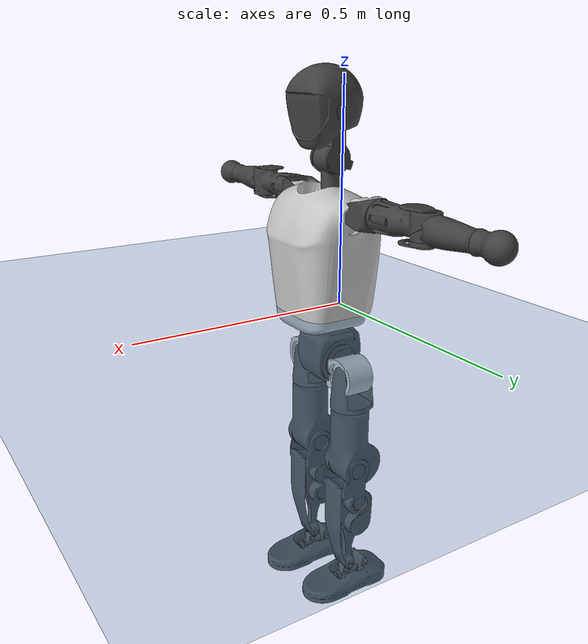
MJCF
<mujoco model="T1">
  <compiler angle="radian" assetdir="assets" balanceinertia="true" inertiafromgeom="false"/>

  <option timestep="0.005" density="1.2" viscosity="2e-05"/>

  <size nkey="1"/>

  <visual>
    <quality shadowsize="8192"/>
    <map shadowclip="0.5"/>
  </visual>

  <default>
    <default class="/">
      <joint armature="0.01" damping="0.01" frictionloss="0.1"/>
      <geom contype="0" conaffinity="0" group="1" solref="-1000 -80"/>
      <site size="0.01 0.005 0.005" group="5"/>
      <general forcelimited="true" biastype="affine" gainprm="25" biasprm="0 -25 -0.6"/>
      <default class="t1">
        <geom rgba="0.25 0.25 0.25 1"/>
        <default class="visual">
          <geom type="mesh" group="2"/>
        </default>
        <default class="collision">
          <geom group="3"/>
        </default>
        <default class="foot">
          <geom size="0.1115 0.05 0.015" type="box" condim="6" group="4" priority="1" solimp="0.015 1 0.015"/>
        </default>
        <default class="reward_collision_sphere">
          <geom group="5" rgba="1 0 0 1"/>
        </default>
      </default>
    </default>
  </default>

  <asset>
    <texture type="skybox" colorspace="auto" name="//unnamed_texture_0" builtin="gradient" rgb1="0.95 0.95 0.95" rgb2="0.95 0.95 0.95" width="100" height="600"/>
    <texture type="2d" colorspace="auto" name="texplane" builtin="checker" rgb1="0.345 0.575 0.748" rgb2="0.345 0.575 0.748" markrgb="1 1 1" width="512" height="512"/>
    <material name="MatPlane" class="/" texture="texplane" texuniform="true" texrepeat="2 2" specular="0.9"/>
    <mesh name="Trunk" class="/" file="Trunk.stl"/>
    <mesh name="H1" class="/" file="H1.stl"/>
    <mesh name="H2" class="/" file="H2.stl"/>
    <mesh name="AL1" class="/" file="AL1.stl"/>
    <mesh name="AL2" class="/" file="AL2.stl"/>
    <mesh name="AL3" class="/" file="AL3.stl"/>
    <mesh name="left_hand_link" class="/" file="left_hand_link.stl"/>
    <mesh name="AR1" class="/" file="AR1.stl"/>
    <mesh name="AR2" class="/" file="AR2.stl"/>
    <mesh name="AR3" class="/" file="AR3.stl"/>
    <mesh name="right_hand_link" class="/" file="right_hand_link.stl"/>
    <mesh name="Waist" class="/" file="Waist.stl"/>
    <mesh name="Hip_Pitch_Left" class="/" file="Hip_Pitch_Left.stl"/>
    <mesh name="Hip_Roll_Left" class="/" file="Hip_Roll_Left.stl"/>
    <mesh name="Hip_Yaw_Left" class="/" file="Hip_Yaw_Left.stl"/>
    <mesh name="Shank_Left" class="/" file="Shank_Left.stl"/>
    <mesh name="Ankle_Cross_Left" class="/" file="Ankle_Cross_Left.stl"/>
    <mesh name="left_foot_link" class="/" file="left_foot_link.stl"/>
    <mesh name="Hip_Pitch_Right" class="/" file="Hip_Pitch_Right.stl"/>
    <mesh name="Hip_Roll_Right" class="/" file="Hip_Roll_Right.stl"/>
    <mesh name="Hip_Yaw_Right" class="/" file="Hip_Yaw_Right.stl"/>
    <mesh name="Shank_Right" class="/" file="Shank_Right.stl"/>
    <mesh name="Ankle_Cross_Right" class="/" file="Ankle_Cross_Right.stl"/>
    <mesh name="right_foot_link" class="/" file="right_foot_link.stl"/>
  </asset>

  <worldbody>
    <geom name="floor" class="/" size="100 100 0.125" type="plane" group="0" material="MatPlane"/>
    <light name="toplight_shadow" class="/" pos="0 0 5" dir="0.0990148 0.0990148 -0.990148" type="directional" ambient="0.04 0.04 0.04" diffuse="0.55 0.55 0.55" specular="0.12 0.12 0.12"/>
    <light name="toplight_fill" class="/" pos="0 0 5" dir="0.0990148 0.0990148 -0.990148" type="directional" castshadow="false" ambient="0.04 0.04 0.04" diffuse="0.3 0.3 0.3" specular="0.08 0.08 0.08"/>
    <body name="trunk" childclass="t1" pos="-0.00115321 -0.00074369 -0.000372533" quat="0.999999 0.000954447 4.70289e-05 0.000758433">
      <inertial pos="0.0239278 0.000245185 0.112699" quat="0.999984 0.00477569 -0.00209729 -0.00229485" mass="4.94346" diaginertia="0.00160223 0.0223432 0.0771098"/>
      <joint name="//unnamed_joint_0" type="free" armature="0" damping="0" frictionloss="0"/>
      <geom name="//unnamed_geom_1" class="visual" rgba="0.76 0.76 0.76 1" mesh="Trunk"/>
      <geom name="//unnamed_geom_2" class="collision" size="0.0576476 0.0768635 0.115295" pos="0.0269628 0 0.128928" type="box"/>
      <geom name="//unnamed_geom_3" class="reward_collision_sphere" size="0.088393" pos="0.0269628 0 0.10744"/>
      <geom name="//unnamed_geom_4" class="reward_collision_sphere" size="0.0115295" pos="0.0269628 0.0664804 0"/>
      <geom name="//unnamed_geom_5" class="reward_collision_sphere" size="0.0115295" pos="0.0269628 -0.0664804 0"/>
      <geom name="//unnamed_geom_6" class="reward_collision_sphere" size="0.0115295" pos="0.0269628 0.083687 0.193392"/>
      <geom name="//unnamed_geom_7" class="reward_collision_sphere" size="0.0115295" pos="0.0269628 -0.083687 0.193392"/>
      <site name="imu" pos="0.024731 -0.0049223 -0.00964831" size="0.00768635"/>
      <camera name="track" pos="0 -1.56424 0" quat="0.707107 0.707107 0 0" mode="trackcom"/>
      <camera name="ego_camera" pos="0.0548245 0 0.451249" quat="-0.5 -0.5 0.5 0.5"/>
      <body name="H1" pos="0.0343704 0.00525385 0.26732" quat="0.999999 -0.000596485 0.000701306 -0.00046659">
        <inertial pos="0.000116651 -0.00116758 0.0611417" quat="0.77101 -0.0149127 -0.0211432 0.636297" mass="0.193461" diaginertia="4.46043e-06 6.96659e-05 0.000213019"/>
        <joint name="AAHead_yaw" pos="0 0 0" axis="0.0114295 -0.0197095 0.99974" range="-1.59588 1.60464" armature="0.00633404" damping="0.0122253" frictionloss="0.0765559"/>
        <geom name="//unnamed_geom_8" class="visual" mesh="H1"/>
        <body name="H2" pos="0.00110569 -0.00083251 0.0655243" quat="0.999999 0.000581133 0.00020641 0.0012579">
          <inertial pos="0.00337052 0.00672482 0.105516" quat="0.990131 0.0974557 -0.0672449 -0.0749754" mass="0.269266" diaginertia="3.57777e-05 0.000549988 0.00241087"/>
          <joint name="Head_pitch" pos="0 0 0" axis="0.00155761 -0.999999 -0.000454371" stiffness="0.000754185" range="-1.17971 0.35262" armature="0.00720914" damping="0.00756506" frictionloss="0.0742307"/>
          <geom name="//unnamed_geom_9" class="visual" mesh="H2"/>
          <geom name="//unnamed_geom_10" class="collision" size="0.0614908" pos="0.00449381 0 0.118184"/>
          <geom name="//unnamed_geom_11" class="reward_collision_sphere" size="0.0691772" pos="0.00898762 0 0.10744"/>
        </body>
      </body>
      <body name="AL1" pos="0.0274726 0.0786719 0.234825" quat="1 -5.86117e-06 0.000481136 1.24012e-05">
        <inertial pos="0.0052225 0.0301457 0.00240632" quat="0.511754 0.494334 -0.496318 0.497403" mass="0.241665" diaginertia="2.48629e-05 0.000377065 0.000415437"/>
        <joint name="Left_Shoulder_Pitch" pos="0 0 0" axis="-0.00640698 0.999978 -0.00161866" range="-3.29156 1.19805" armature="0.00738379" damping="0.00140193" frictionloss="0.0824484"/>
        <geom name="//unnamed_geom_12" class="visual" rgba="0.76 0.76 0.76 1" mesh="AL1"/>
        <body name="AL2" pos="0.00432718 0.0331921 -0.00110665" quat="1 -0.000481959 0.000427017 -0.000187963">
          <inertial pos="0.00313325 0.0272847 5.49523e-05" quat="0.488846 0.511802 -0.487233 0.511559" mass="0.0705438" diaginertia="6.70013e-06 8.8119e-05 0.00024029"/>
          <joint name="Left_Shoulder_Roll" pos="0 0 0" axis="-0.999986 0.0032549 -0.004124" range="-1.597 1.81672" armature="0.00752325" damping="0" frictionloss="0.0682591"/>
          <geom name="//unnamed_geom_13" class="visual" mesh="AL2"/>
          <body name="AL3" pos="-0.00489829 0.0467123 0.000280641" quat="1 -9.5954e-05 -0.00030046 -0.00018867">
            <inertial pos="0.00108717 0.0691036 -0.00286665" quat="0.701133 0.71294 -0.0101636 0.00513221" mass="0.460899" diaginertia="0.000232866 0.00381501 0.000909892"/>
            <joint name="Left_Elbow_Pitch" pos="0 0 0" axis="0.0119669 -0.999919 -0.00438006" range="-2.31397 2.20542" armature="0.00910963" damping="0.00181419" frictionloss="0.0745588"/>
            <geom name="//unnamed_geom_14" class="visual" mesh="AL3"/>
            <geom name="//unnamed_geom_15" class="collision" size="0.0230591 0.0576476" pos="0 0.0391061 0" quat="0.707105 0.707108 0 0" type="cylinder"/>
            <geom name="//unnamed_geom_16" class="reward_collision_sphere" size="0.0276709"/>
            <body name="left_hand_link" pos="0.00176654 0.115149 0.000456519" quat="0.999999 0.000255936 0.000864771 -0.000675891">
              <inertial pos="-0.00662838 0.0889858 -0.00187906" quat="0.70898 0.70519 -0.00336831 -0.00664561" mass="0.146665" diaginertia="0.000142954 0.00232249 0.000315429"/>
              <joint name="Left_Elbow_Yaw" pos="0 0 0" axis="0.00601448 -0.00210852 0.99998" stiffness="0.00318787" range="-2.43916 0.012789" armature="0.00674188" damping="0" frictionloss="0.0669048"/>
              <geom name="//unnamed_geom_17" class="visual" mesh="left_hand_link"/>
              <geom name="//unnamed_geom_18" class="collision" size="0.0230591 0.0672556" pos="0 0.101676 0" quat="0.707105 0.707108 0 0" type="cylinder"/>
              <geom name="//unnamed_geom_19" class="reward_collision_sphere" size="0.0384318"/>
              <geom name="//unnamed_geom_20" class="reward_collision_sphere" size="0.0269022" pos="0 0.0860334 0"/>
              <geom name="//unnamed_geom_21" class="reward_collision_sphere" size="0.0269022" pos="0 0.168156 0"/>
            </body>
          </body>
        </body>
      </body>
      <body name="AR1" pos="0.0221621 -0.0788602 0.236995" quat="1 6.24309e-06 0.000500177 8.5611e-05">
        <inertial pos="-3.22095e-05 -0.0335654 -0.000452264" quat="0.50532 0.496047 -0.50356 0.494991" mass="0.236972" diaginertia="2.4789e-05 0.000384988 0.00041695"/>
        <joint name="Right_Shoulder_Pitch" pos="0 0 0" axis="7.48599e-05 -0.999977 0.0067604" range="-1.19576 3.34618" armature="0.00719519" damping="0.0307636" frictionloss="0.0781874"/>
        <geom name="//unnamed_geom_22" class="visual" rgba="0.76 0.76 0.76 1" mesh="AR1"/>
        <body name="AR2" pos="-0.00378773 -0.035581 0.00436558" quat="1 0.000108749 0.000643416 0.00071781">
          <inertial pos="0.00195674 -0.0320954 0.00545323" quat="0.519021 0.486812 -0.512038 0.48109" mass="0.0716749" diaginertia="7.25692e-06 0.00010617 0.000252151"/>
          <joint name="Right_Shoulder_Roll" pos="0 0 0" axis="-0.999981 0.00618008 -2.69194e-05" stiffness="0.0205417" range="-1.85652 1.52507" armature="0.00794203" damping="0" frictionloss="0.0720079"/>
          <geom name="//unnamed_geom_23" class="visual" mesh="AR2"/>
          <body name="AR3" pos="-0.00359082 -0.0484321 0.00136351" quat="1 -0.000570312 -0.000427087 -0.000485959">
            <inertial pos="0.00457698 -0.0653073 -0.000674926" quat="0.70779 0.706423 -0.000118109 -7.71124e-05" mass="0.459654" diaginertia="0.000226517 0.00374585 0.000824198"/>
            <joint name="Right_Elbow_Pitch" pos="0 0 0" axis="0.000767932 1 0.000442186" stiffness="0.0146717" range="-2.26148 2.28889" armature="0.00781949" damping="0" frictionloss="0.0952225"/>
            <geom name="//unnamed_geom_24" class="visual" mesh="AR3"/>
            <geom name="//unnamed_geom_25" class="collision" size="0.0230591 0.0576476" pos="0 -0.0391061 0" quat="0.707105 0.707108 0 0" type="cylinder"/>
            <geom name="//unnamed_geom_26" class="reward_collision_sphere" size="0.0276709"/>
            <body name="right_hand_link" pos="-0.000972611 -0.115409 0.00159044" quat="1 8.31412e-05 -4.57658e-05 0.000680868">
              <inertial pos="0.000510915 -0.0880807 -0.00285914" quat="0.706339 0.707871 -0.000889692 0.00168186" mass="0.14384" diaginertia="0.000149357 0.00242418 0.000295741"/>
              <joint name="Right_Elbow_Yaw" pos="0 0 0" axis="0.00140812 0.000315367 0.999999" range="-0.0106988 2.40661" armature="0.00738162" damping="0" frictionloss="0.0931433"/>
              <geom name="//unnamed_geom_27" class="visual" mesh="right_hand_link"/>
              <geom name="//unnamed_geom_28" class="collision" size="0.0230591 0.0672556" pos="0 -0.101676 0" quat="0.707105 0.707108 0 0" type="cylinder"/>
              <geom name="//unnamed_geom_29" class="reward_collision_sphere" size="0.0384318"/>
              <geom name="//unnamed_geom_30" class="reward_collision_sphere" size="0.0269022" pos="0 -0.0860334 0"/>
              <geom name="//unnamed_geom_31" class="reward_collision_sphere" size="0.0269022" pos="0 -0.168156 0"/>
            </body>
          </body>
        </body>
      </body>
      <body name="Waist" pos="0.0286246 0.000166978 -0.121746" quat="0.999999 -0.000116827 -0.000266625 -0.00118444">
        <inertial pos="-0.000168171 -0.0011984 0.00664305" quat="0.983516 -0.00038154 -0.180789 0.0033331" mass="1.18986" diaginertia="9.01887e-05 0.00158751 0.00621571"/>
        <joint name="Waist" pos="0 0 0" axis="0.0116954 -0.00299773 0.999927" range="-1.55826 1.57867" armature="0.00754503" damping="0.0114867" frictionloss="0.0928792"/>
        <geom name="//unnamed_geom_32" class="visual" mesh="Waist"/>
        <body name="Hip_Pitch_Left" pos="0.00191098 0.0851403 -0.00179253" quat="1 -0.000474453 -0.000777446 0.000221939">
          <inertial pos="-0.00133807 -0.00306955 -0.0181608" quat="0.975163 0.220943 0.0151427 0.00337915" mass="0.449082" diaginertia="3.25907e-05 0.000404069 0.00165553"/>
          <joint name="Left_Hip_Pitch" pos="0 0 0" axis="-0.00262886 0.999913 -0.0129505" range="-1.83394 1.56782" armature="0.00719675" damping="0" frictionloss="0.0761993"/>
          <geom name="//unnamed_geom_33" class="visual" rgba="0.76 0.76 0.76 1" mesh="Hip_Pitch_Left"/>
          <body name="Hip_Roll_Left" pos="-0.00428955 0.00254585 -0.0197521" quat="0.999998 -0.000699676 -0.00176416 7.941e-05">
            <inertial pos="-0.000542595 0.00100016 -0.0573736" quat="0.707625 -0.00069432 -0.00481915 0.706571" mass="0.193211" diaginertia="3.67037e-05 0.000470113 0.000811441"/>
            <joint name="Left_Hip_Roll" pos="0 0 0" axis="-0.999856 0.0118876 0.0121267" stiffness="0.00228469" range="-1.6681 0.155445" armature="0.00772969" damping="0.00941714" frictionloss="0.0724136"/>
            <geom name="//unnamed_geom_34" class="visual" mesh="Hip_Roll_Left"/>
            <geom name="//unnamed_geom_35" class="reward_collision_sphere" size="0.0422749"/>
            <body name="Hip_Yaw_Left" pos="0.000190061 -0.00155767 -0.0883649" quat="0.999998 0.000307949 0.000845423 -0.00179802">
              <inertial pos="0.00200006 -0.00293964 -0.0977327" quat="0.69943 -0.0403988 -0.0233018 0.713178" mass="0.941186" diaginertia="0.000429376 0.00726196 0.00367658"/>
              <joint name="Left_Hip_Yaw" pos="0 0 0" axis="0.00221181 0.0098205 -0.999949" stiffness="0.0234255" range="-1.11518 0.930807" armature="0.00784167" damping="0.0172517" frictionloss="0.0655006"/>
              <geom name="//unnamed_geom_36" class="visual" mesh="Hip_Yaw_Left"/>
              <geom name="//unnamed_geom_37" class="collision" size="0.0384318 0.0614908" type="cylinder"/>
              <body name="Shank_Left" pos="-0.00286157 -0.00411048 -0.145726" quat="1 -0.000508348 0.000227725 0.000250613">
                <inertial pos="0.00294304 0.00205702 -0.131755" quat="0.995852 0.00923241 -0.0116025 0.0897666" mass="0.7997" diaginertia="0.000639875 0.00938968 0.00264328"/>
                <joint name="Left_Knee_Pitch" pos="0 0 0" axis="0.00360333 0.999858 -0.0164589" range="2.53908e-05 2.29531" armature="0.00838405" damping="0.0193486" frictionloss="0.0575277"/>
                <geom name="//unnamed_geom_38" class="visual" mesh="Shank_Left"/>
                <geom name="//unnamed_geom_39" class="collision" size="0.0384318 0.0576476" pos="0 0 -0.128928" type="cylinder"/>
                <geom name="//unnamed_geom_40" class="reward_collision_sphere" size="0.0499613"/>
                <body name="Ankle_Cross_Left" pos="0.00189478 -0.00266673 -0.299868" quat="1 -0.000291134 -0.000362778 -0.000780941">
                  <inertial pos="-0.00199408 0.00225008 -0.0107723" quat="0.446667 0.54208 0.552931 0.448225" mass="0.0329815" diaginertia="5.35035e-07 7.42766e-06 1.67105e-05"/>
                  <joint name="Left_Ankle_Pitch" pos="0 0 0" axis="-0.00570728 0.999941 0.00925323" range="-0.856795 0.376288" armature="0.00543105" damping="0" frictionloss="0.0741146"/>
                  <geom name="//unnamed_geom_41" class="visual" mesh="Ankle_Cross_Left"/>
                  <body name="left_foot_link" pos="-0.00560805 0.00281027 -0.0138352" quat="1 -2.80769e-05 -2.26463e-05 -0.000506484">
                    <inertial pos="0.00485834 -0.00121422 -0.0100351" quat="0.0109455 0.623031 -0.00391298 0.782111" mass="0.30992" diaginertia="5.01427e-05 0.0007374 0.00335248"/>
                    <joint name="Left_Ankle_Roll" pos="0 0 0" axis="-0.999988 -0.00161893 0.00457372" stiffness="0.0101496" range="-0.448597 0.432923" armature="0.00756455" damping="0.0381035" frictionloss="0.0675315"/>
                    <geom name="//unnamed_geom_42" class="visual" mesh="left_foot_link"/>
                    <geom name="left_foot" class="foot" size="0.089455 0.0454332 0.0115815" pos="0.00449381 0 -0.016116"/>
                    <geom name="//unnamed_geom_44" class="reward_collision_sphere" size="0.039969" pos="0.00449381 0 -0.016116"/>
                    <geom name="//unnamed_geom_45" class="reward_collision_sphere" size="0.0230591" pos="0.0426912 -0.0179888 -0.016116"/>
                    <geom name="//unnamed_geom_46" class="reward_collision_sphere" size="0.0230591" pos="-0.0314567 -0.0179888 -0.016116"/>
                    <site name="left_foot" class="foot" pos="0.00449381 0 -0.016116" size="0.00768635"/>
                  </body>
                </body>
              </body>
            </body>
          </body>
        </body>
        <body name="Hip_Pitch_Right" pos="0.000243293 -0.081421 0.00103872" quat="1 0.000230599 -0.00060144 5.45898e-05">
          <inertial pos="-0.00213525 0.00565232 -0.0159054" quat="0.972479 -0.232896 0.00629818 -0.00199255" mass="0.478212" diaginertia="3.53646e-05 0.000405278 0.00180634"/>
          <joint name="Right_Hip_Pitch" pos="0 0 0" axis="-0.00358108 -0.999993 0.00123594" range="-1.43729 1.69399" armature="0.0085603" damping="0" frictionloss="0.0950178"/>
          <geom name="//unnamed_geom_47" class="visual" rgba="0.76 0.76 0.76 1" mesh="Hip_Pitch_Right"/>
          <body name="Hip_Roll_Right" pos="-0.0051991 0.000890781 -0.0196552" quat="1 -2.46359e-05 -0.000494578 -0.000867746">
            <inertial pos="-0.00110015 0.0022769 -0.0603669" quat="0.700805 -0.00305386 -0.00337765 0.713339" mass="0.180062" diaginertia="3.33502e-05 0.000452529 0.000720635"/>
            <joint name="Right_Hip_Roll" pos="0 0 0" axis="-0.99971 -0.00879463 0.0224079" range="-0.208501 1.52134" armature="0.00805699" damping="0.0117721" frictionloss="0.0861556"/>
            <geom name="//unnamed_geom_48" class="visual" mesh="Hip_Roll_Right"/>
            <geom name="//unnamed_geom_49" class="reward_collision_sphere" size="0.0422749"/>
            <body name="Hip_Yaw_Right" pos="0.00469075 0.00128893 -0.0850873" quat="0.999999 -0.000549075 4.67637e-06 0.000840656">
              <inertial pos="-0.00298961 -0.00447277 -0.0953083" quat="0.7 -0.045919 -0.0146804 0.712514" mass="0.982553" diaginertia="0.00046534 0.00729004 0.00355773"/>
              <joint name="Right_Hip_Yaw" pos="0 0 0" axis="-0.00571742 0.0050223 -0.999971" stiffness="0.00230863" range="-1.04209 1.04583" armature="0.00667783" damping="0" frictionloss="0.0755305"/>
              <geom name="//unnamed_geom_50" class="visual" mesh="Hip_Yaw_Right"/>
              <geom name="//unnamed_geom_51" class="collision" size="0.0384318 0.0614908" type="cylinder"/>
              <body name="Shank_Right" pos="-0.00346487 0.00505084 -0.146528" quat="1 -1.77608e-05 -4.42339e-05 3.2656e-05">
                <inertial pos="0.00278843 -0.00673104 -0.132387" quat="0.999078 -0.0122606 -0.0302487 -0.0279059" mass="0.806303" diaginertia="0.000690186 0.0107862 0.0028819"/>
                <joint name="Right_Knee_Pitch" pos="0 0 0" axis="-0.00399215 -0.999937 0.0104573" range="-2.34064 0.0185506" armature="0.0076958" damping="0.0202842" frictionloss="0.0741751"/>
                <geom name="//unnamed_geom_52" class="visual" mesh="Shank_Right"/>
                <geom name="//unnamed_geom_53" class="collision" size="0.0384318 0.0576476" pos="0 0 -0.128928" type="cylinder"/>
                <geom name="//unnamed_geom_54" class="reward_collision_sphere" size="0.0499613"/>
                <body name="Ankle_Cross_Right" pos="0.0040943 0.00106601 -0.303154" quat="0.999999 0.000672513 -6.51872e-05 -0.000749934">
                  <inertial pos="-0.00364966 0.00326448 -0.0065517" quat="0.456941 0.552825 0.554385 0.422193" mass="0.032476" diaginertia="5.24307e-07 8.44827e-06 1.67938e-05"/>
                  <joint name="Right_Ankle_Pitch" pos="0 0 0" axis="0.00896781 -0.999953 0.00357462" stiffness="0.0079093" range="-0.342481 0.869631" armature="0.00700855" damping="0.0285758" frictionloss="0.0734123"/>
                  <geom name="//unnamed_geom_55" class="visual" mesh="Ankle_Cross_Right"/>
                  <body name="right_foot_link" pos="0.00358622 -0.000374072 -0.0170186" quat="1 -9.66606e-08 -5.55508e-07 -1.51669e-07">
                    <inertial pos="-0.00217495 0.00118749 -0.0137023" quat="-0.000969158 0.618916 -0.00166671 0.785455" mass="0.303249" diaginertia="4.74934e-05 0.000716533 0.00309414"/>
                    <joint name="Right_Ankle_Roll" pos="0 0 0" axis="-0.999989 0.00398028 -0.00263289" range="-0.456673 0.457458" armature="0.0069736" damping="0" frictionloss="0.0815707"/>
                    <geom name="//unnamed_geom_56" class="visual" mesh="right_foot_link"/>
                    <geom name="right_foot" class="foot" size="0.0994949 0.0428599 0.0121952" pos="0.00449381 0 -0.016116"/>
                    <geom name="//unnamed_geom_58" class="reward_collision_sphere" size="0.0307454"/>
                    <geom name="//unnamed_geom_59" class="reward_collision_sphere" size="0.0230591" pos="0.00449381 0 -0.016116"/>
                    <geom name="//unnamed_geom_60" class="reward_collision_sphere" size="0.0230591" pos="0.0426912 0.0179888 -0.016116"/>
                    <geom name="//unnamed_geom_61" class="reward_collision_sphere" size="0.0230591" pos="-0.0314567 0.0179888 -0.016116"/>
                    <site name="right_foot" class="foot" pos="0.00449381 0 -0.016116" size="0.00768635"/>
                  </body>
                </body>
              </body>
            </body>
          </body>
        </body>
      </body>
    </body>
  </worldbody>

  <contact>
    <pair class="/" geom1="floor" geom2="left_foot" name="//unnamed_contact_0"/>
    <pair class="/" geom1="floor" geom2="right_foot" name="//unnamed_contact_1"/>
  </contact>

  <actuator>
    <general name="AAHead_yaw" class="/" joint="AAHead_yaw" forcerange="-5.07481 5.07481" gainprm="20.0353" biasprm="0 -20.0353 -0.490627"/>
    <general name="Head_pitch" class="/" joint="Head_pitch" forcerange="-5.86551 5.86551" gainprm="20.0353" biasprm="0 -20.0353 -0.490627"/>
    <general name="Left_Shoulder_Pitch" class="/" joint="Left_Shoulder_Pitch" forcerange="-14.8115 14.8115" gainprm="20.0353" biasprm="0 -20.0353 -0.490627"/>
    <general name="Left_Shoulder_Roll" class="/" joint="Left_Shoulder_Roll" forcerange="-13.0393 13.0393" gainprm="20.0353" biasprm="0 -20.0353 -0.490627"/>
    <general name="Left_Elbow_Pitch" class="/" joint="Left_Elbow_Pitch" forcerange="-12.8188 12.8188" gainprm="20.0353" biasprm="0 -20.0353 -0.490627"/>
    <general name="Left_Elbow_Yaw" class="/" joint="Left_Elbow_Yaw" forcerange="-13.7722 13.7722" gainprm="20.0353" biasprm="0 -20.0353 -0.490627"/>
    <general name="Right_Shoulder_Pitch" class="/" joint="Right_Shoulder_Pitch" forcerange="-13.4356 13.4356" gainprm="20.0353" biasprm="0 -20.0353 -0.490627"/>
    <general name="Right_Shoulder_Roll" class="/" joint="Right_Shoulder_Roll" forcerange="-12.6926 12.6926" gainprm="20.0353" biasprm="0 -20.0353 -0.490627"/>
    <general name="Right_Elbow_Pitch" class="/" joint="Right_Elbow_Pitch" forcerange="-13.466 13.466" gainprm="20.0353" biasprm="0 -20.0353 -0.490627"/>
    <general name="Right_Elbow_Yaw" class="/" joint="Right_Elbow_Yaw" forcerange="-14.9521 14.9521" gainprm="20.0353" biasprm="0 -20.0353 -0.490627"/>
    <general name="Waist" class="/" joint="Waist" forcerange="-21.1985 21.1985" gainprm="20.0353" biasprm="0 -20.0353 -0.490627"/>
    <general name="Left_Hip_Pitch" class="/" joint="Left_Hip_Pitch" forcerange="-35.3059 35.3059" gainprm="20.0353" biasprm="0 -20.0353 -0.490627"/>
    <general name="Left_Hip_Roll" class="/" joint="Left_Hip_Roll" forcerange="-25.1735 25.1735" gainprm="20.0353" biasprm="0 -20.0353 -0.490627"/>
    <general name="Left_Hip_Yaw" class="/" joint="Left_Hip_Yaw" forcerange="-24.8937 24.8937" gainprm="20.0353" biasprm="0 -20.0353 -0.490627"/>
    <general name="Left_Knee_Pitch" class="/" joint="Left_Knee_Pitch" forcerange="-46.8023 46.8023" gainprm="20.0353" biasprm="0 -20.0353 -0.490627"/>
    <general name="Left_Ankle_Pitch" class="/" joint="Left_Ankle_Pitch" forcerange="-15.2702 15.2702" gainprm="20.0353" biasprm="0 -20.0353 -0.490627"/>
    <general name="Left_Ankle_Roll" class="/" joint="Left_Ankle_Roll" forcerange="-10.9958 10.9958" gainprm="20.0353" biasprm="0 -20.0353 -0.490627"/>
    <general name="Right_Hip_Pitch" class="/" joint="Right_Hip_Pitch" forcerange="-32.2717 32.2717" gainprm="20.0353" biasprm="0 -20.0353 -0.490627"/>
    <general name="Right_Hip_Roll" class="/" joint="Right_Hip_Roll" forcerange="-20.9403 20.9403" gainprm="20.0353" biasprm="0 -20.0353 -0.490627"/>
    <general name="Right_Hip_Yaw" class="/" joint="Right_Hip_Yaw" forcerange="-21.6324 21.6324" gainprm="20.0353" biasprm="0 -20.0353 -0.490627"/>
    <general name="Right_Knee_Pitch" class="/" joint="Right_Knee_Pitch" forcerange="-50.1922 50.1922" gainprm="20.0353" biasprm="0 -20.0353 -0.490627"/>
    <general name="Right_Ankle_Pitch" class="/" joint="Right_Ankle_Pitch" forcerange="-17.5422 17.5422" gainprm="20.0353" biasprm="0 -20.0353 -0.490627"/>
    <general name="Right_Ankle_Roll" class="/" joint="Right_Ankle_Roll" forcerange="-12.2929 12.2929" gainprm="20.0353" biasprm="0 -20.0353 -0.490627"/>
  </actuator>

  <sensor>
    <gyro site="imu" name="imu_angular_velocity"/>
    <velocimeter site="imu" name="imu_linear_velocity"/>
    <framelinvel objtype="site" objname="left_foot" name="left_foot_global_linear_velocity"/>
    <framelinvel objtype="site" objname="right_foot" name="right_foot_global_linear_velocity"/>
  </sensor>

  <keyframe>
    <key name="home" qpos="0 0 0.6385 1 0 0 0 0 0 0 1.4 0 -0.4 0 -1.4 0 0.4 0 -0.4 0 0 0.8 -0.4 0 0.4 0 0 -0.8 0.4 0"/>
  </keyframe>
</mujoco>
